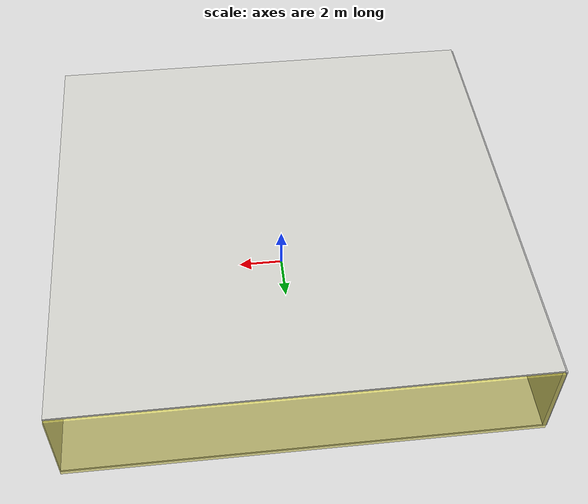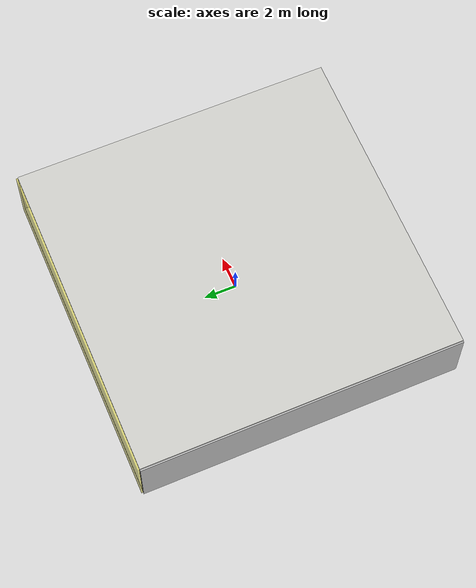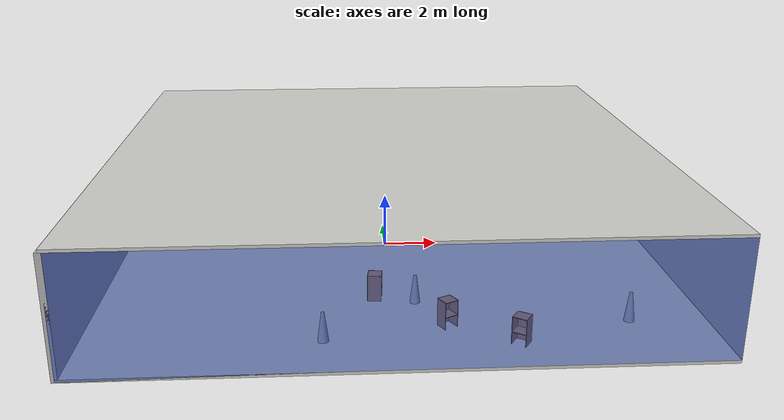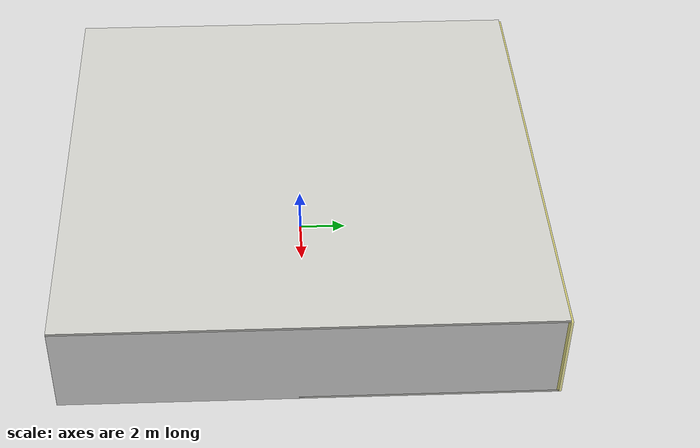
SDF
<sdf version="1.4">
 <world name="default">
  <physics type="ode">
   <max_step_size>0.001</max_step_size>
   <real_time_factor>1</real_time_factor>
   <real_time_update_rate>1000</real_time_update_rate>
   <gravity>0 0 -9.8</gravity>
  </physics>
  <scene><ambient>0.4 0.4 0.4 1</ambient><background>0.7 0.7 0.7 1</background><shadows>1</shadows></scene>
  <model name="Surrounding">
   <static>1</static>
   <link name="Ceiling">
    <collision name="Ceiling_Collision"><geometry><box><size>20 20 0.1</size></box></geometry></collision>
    <visual name="Ceiling_Visual">
     <geometry><box><size>20 20 0.1</size></box></geometry>
     <material>
      <script><uri>file://media/materials/scripts/gazebo.material</uri><name>Gazebo/CeilingTiled</name></script>
     </material>
    </visual>
    <pose>0 0 4.05 0 0 0</pose>
   </link>
   <link name="Wall_South">
    <collision name="Wall_South_Collision">
     <geometry><box><size>20 0 4</size></box></geometry>
     <pose>0 0 2 0 -0 0</pose>
    </collision>
    <visual name="Wall_South_Visual">
     <pose>0 0 2 0 -0 0</pose>
     <geometry><box><size>20 0 4</size></box></geometry>
     <material>
      <script><uri>file://media/materials/scripts/gazebo.material</uri><name>Gazebo/BlueTransparent</name></script>
     </material>
    </visual>
    <velocity_decay><linear>0</linear><angular>0</angular></velocity_decay>
    <pose>0 -10 0 0 -0 0</pose>
   </link>
   <link name="Wall_East">
    <collision name="Wall_21_Collision">
     <geometry><box><size>20 0 4</size></box></geometry>
     <pose>0 0 2 0 -0 0</pose>
    </collision>
    <visual name="Wall_21_Visual">
     <pose>0 0 2 0 -0 0</pose>
     <geometry><box><size>20 0 4</size></box></geometry>
     <material>
      <script><uri>file://media/materials/scripts/gazebo.material</uri><name>Gazebo/WhiteGlow</name></script>
     </material>
    </visual>
    <velocity_decay><linear>0</linear><angular>0</angular></velocity_decay>
    <pose>10 0 0 0 -0 1.5708</pose>
   </link>
   <link name="Wall_North">
    <collision name="Wall_22_Collision">
     <geometry><box><size>20 0.2 4</size></box></geometry>
     <pose>0 0 2 0 -0 0</pose>
    </collision>
    <visual name="Wall_22_Visual">
     <pose>0 0 2 0 -0 0</pose>
     <geometry><box><size>20 0.2 4</size></box></geometry>
     <material>
      <script>
       <uri>file://media/materials/scripts/gazebo.material</uri>
       <name>Gazebo/YellowTransparent</name>
      </script>
     </material>
    </visual>
    <velocity_decay><linear>0</linear><angular>0</angular></velocity_decay>
    <pose>0 10 0 0 -0 0</pose>
   </link>
   <link name="Wall_West">
    <collision name="Wall_23_Collision">
     <geometry><box><size>20 0.2 4</size></box></geometry>
     <pose>0 0 2 0 -0 0</pose>
    </collision>
    <visual name="Wall_23_Visual">
     <pose>0 0 2 0 -0 0</pose>
     <geometry><box><size>20 0.2 4</size></box></geometry>
     <material>
      <script><uri>file://media/materials/scripts/gazebo.material</uri><name>Gazebo/Pioneer2Body</name></script>
     </material>
    </visual>
    <velocity_decay><linear>0</linear><angular>0</angular></velocity_decay>
    <pose>-10 0 0 0 0 -1.5708</pose>
   </link>
   <link name="Ground_link">
    <collision name="collision">
     <pose>0 0 .05 0 -0 0</pose>
     <geometry><box><size>20 20 0.1</size></box></geometry>
    </collision>
    <visual name="visual">
     <pose>0 0 .05 0 -0 0</pose>
     <geometry><box><size>20 20 0.1</size></box></geometry>
     <material>
      <script><uri>file://media/materials/scripts/gazebo.material</uri><name>Gazebo/CeilingTiled</name></script>
     </material>
    </visual>
   </link>
   <static>1</static>
  </model>
  <spherical_coordinates>
   <surface_model>EARTH_WGS84</surface_model>
   <latitude_deg>0</latitude_deg>
   <longitude_deg>0</longitude_deg>
   <elevation>0</elevation>
   <heading_deg>0</heading_deg>
  </spherical_coordinates>
  <light name="lightball_0" type="diffuse">
   <diffuse>0.8 0.8 0.8 1</diffuse>
   <specular>0.2 0.2 0.2 1</specular>
   <attenuation>
    <range>100</range>
    <constant>0.7</constant>
    <linear>0.01</linear>
    <quadratic>0.001</quadratic>
   </attenuation>
   <direction>-0.5 0.1 -0.9</direction>
   <pose>5.94351208576 -3.86353539924 1.26443853614 0 0 0</pose>
  </light>
  <light name="lightball_1" type="diffuse">
   <diffuse>0.8 0.8 0.8 1</diffuse>
   <specular>0.2 0.2 0.2 1</specular>
   <attenuation>
    <range>100</range>
    <constant>0.7</constant>
    <linear>0.01</linear>
    <quadratic>0.001</quadratic>
   </attenuation>
   <direction>-0.5 0.1 -0.9</direction>
   <pose>0.902199069855 4.97424379568 1.63712090637 0 0 0</pose>
  </light>
  <light name="lightball_2" type="diffuse">
   <diffuse>0.8 0.8 0.8 1</diffuse>
   <specular>0.2 0.2 0.2 1</specular>
   <attenuation>
    <range>100</range>
    <constant>0.7</constant>
    <linear>0.01</linear>
    <quadratic>0.001</quadratic>
   </attenuation>
   <direction>-0.5 0.1 -0.9</direction>
   <pose>9.54755938883 -2.57510373626 1.44072377139 0 0 0</pose>
  </light>
  <light name="lightball_3" type="diffuse">
   <diffuse>0.8 0.8 0.8 1</diffuse>
   <specular>0.2 0.2 0.2 1</specular>
   <attenuation>
    <range>100</range>
    <constant>0.7</constant>
    <linear>0.01</linear>
    <quadratic>0.001</quadratic>
   </attenuation>
   <direction>-0.5 0.1 -0.9</direction>
   <pose>2.38618468282 -2.41432065155 1.89587556973 0 0 0</pose>
  </light>
  <light name="lightball_4" type="diffuse">
   <diffuse>0.8 0.8 0.8 1</diffuse>
   <specular>0.2 0.2 0.2 1</specular>
   <attenuation>
    <range>100</range>
    <constant>0.7</constant>
    <linear>0.01</linear>
    <quadratic>0.001</quadratic>
   </attenuation>
   <direction>-0.5 0.1 -0.9</direction>
   <pose>-9.22561326576 8.30451877725 1.13111452662 0 0 0</pose>
  </light>
  <light name="lightball_5" type="diffuse">
   <diffuse>0.8 0.8 0.8 1</diffuse>
   <specular>0.2 0.2 0.2 1</specular>
   <attenuation>
    <range>100</range>
    <constant>0.7</constant>
    <linear>0.01</linear>
    <quadratic>0.001</quadratic>
   </attenuation>
   <direction>-0.5 0.1 -0.9</direction>
   <pose>0.570260568684 8.16987696294 3.64446888592 0 0 0</pose>
  </light>
  <light name="lightball_6" type="diffuse">
   <diffuse>0.8 0.8 0.8 1</diffuse>
   <specular>0.2 0.2 0.2 1</specular>
   <attenuation>
    <range>100</range>
    <constant>0.7</constant>
    <linear>0.01</linear>
    <quadratic>0.001</quadratic>
   </attenuation>
   <direction>-0.5 0.1 -0.9</direction>
   <pose>-0.391794212288 8.12905422009 2.24865937869 0 0 0</pose>
  </light>
  <light name="lightball_7" type="diffuse">
   <diffuse>0.8 0.8 0.8 1</diffuse>
   <specular>0.2 0.2 0.2 1</specular>
   <attenuation>
    <range>100</range>
    <constant>0.7</constant>
    <linear>0.01</linear>
    <quadratic>0.001</quadratic>
   </attenuation>
   <direction>-0.5 0.1 -0.9</direction>
   <pose>4.38570104675 2.09800295836 3.36033263063 0 0 0</pose>
  </light>
  <light name="lightball_8" type="diffuse">
   <diffuse>0.8 0.8 0.8 1</diffuse>
   <specular>0.2 0.2 0.2 1</specular>
   <attenuation>
    <range>100</range>
    <constant>0.7</constant>
    <linear>0.01</linear>
    <quadratic>0.001</quadratic>
   </attenuation>
   <direction>-0.5 0.1 -0.9</direction>
   <pose>-9.38311423304 0.838852872115 3.32733425201 0 0 0</pose>
  </light>
  <include>
   <uri>model://construction_cone</uri>
   <pose>-2.38310288546 -8.10115732643 0 0 0 1.64474009423</pose>
  </include>
  <include><uri>model://cabinet</uri><pose>-0.643092137996 -5.13259453915 0 0 0 3.03126123596</pose></include>
  <include><uri>model://cabinet</uri><pose>1.56569591288 -7.27499462848 0 0 0 2.06038866644</pose></include>
  <include>
   <uri>model://construction_cone</uri>
   <pose>0.682628009193 -5.50200288597 0 0 0 0.786726137817</pose>
  </include>
  <include>
   <uri>model://textured_shapes</uri>
   <pose>1.52003903548 3.98228379474 0 0 0 1.60684876884</pose>
  </include>
  <include><uri>model://cabinet</uri><pose>3.68836990401 -8.5515830077 0 0 0 0.98201557003</pose></include>
  <include>
   <uri>model://construction_cone</uri>
   <pose>7.46150984836 -7.24934673628 0 0 0 2.48074485594</pose>
  </include>
  <include><uri>model://cabinet</uri><pose>7.8853632333 3.48523419853 0 0 0 2.35650495175</pose></include>
 </world>
</sdf>

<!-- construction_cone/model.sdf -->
<sdf version="1.5">
  <model name="Construction Cone">
    <link name="link">
      <collision name="collision">
        <geometry>
          <mesh>
            <scale>10 10 10</scale>
            <uri>file://isr-testbed/construction_cone/meshes/construction_cone.dae</uri>
          </mesh>
        </geometry>
      </collision>
      <visual name="visual">
        <geometry>
          <mesh>
            <scale>10 10 10</scale>
            <uri>file://isr-testbed/construction_cone/meshes/construction_cone.dae</uri>
          </mesh>
        </geometry>
      </visual>
    </link>
  </model>
</sdf>

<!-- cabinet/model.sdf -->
<sdf version="1.5">
  <model name="cabinet">
    <static>true</static>
    <link name="cabinet_bottom_plate">
      <inertial>
        <pose>0 0 -1 0 0 0</pose>
        <inertia>
          <ixx>2.050000</ixx>
          <ixy>0</ixy>
          <ixz>0</ixz>
          <iyy>2.050000</iyy>
          <iyz>0</iyz>
          <izz>2.050000</izz>
        </inertia>
        <mass>25.000000</mass>
      </inertial>
      <collision name="cabinet_bottom_plate_geom">
        <pose>0 0 0.010000 0 0 0</pose>
        <geometry>
          <box>
            <size>0.450000 0.450000 0.020000</size>
          </box>
        </geometry>
      </collision>
      <visual name="cabinet_bottom_plate_geom_visual">
        <pose>0 0 0.010000 0 0 0</pose>
        <geometry>
          <box>
            <size>0.450000 0.450000 0.020000</size>
          </box>
        </geometry>
        <material>
          <script>
            <uri>model://media/materials/scripts/gazebo.material</uri>
            <name>Gazebo/Wood</name>
          </script>
        </material>
      </visual>
      <collision name="cabinet_bottom_plate_geom_cabinet_back_plate">
        <pose>0.235000 0 0.510000 0 0 0</pose>
        <geometry>
          <box>
            <size>0.020000 0.450000 1.020000</size>
          </box>
        </geometry>
      </collision>
      <visual name="cabinet_bottom_plate_geom_cabinet_back_plate_visual">
        <pose>0.235000 0 0.510000 0 0 0</pose>
        <geometry>
          <box>
            <size>0.020000 0.450000 1.020000</size>
          </box>
        </geometry>
        <material>
          <script>
            <uri>model://media/materials/scripts/gazebo.material</uri>
            <name>Gazebo/Wood</name>
          </script>
        </material>
      </visual>
      <collision name="cabinet_bottom_plate_geom_cabinet_left_plate">
        <pose>0 0.235000 0.510000 0 0 0</pose>
        <geometry>
          <box>
            <size>0.450000 0.020000 1.020000</size>
          </box>
        </geometry>
      </collision>
      <visual name="cabinet_bottom_plate_geom_cabinet_left_plate_visual">
        <pose>0 0.235000 0.510000 0 0 0</pose>
        <geometry>
          <box>
            <size>0.450000 0.020000 1.020000</size>
          </box>
        </geometry>
        <material>
          <script>
            <uri>model://media/materials/scripts/gazebo.material</uri>
            <name>Gazebo/Wood</name>
          </script>
        </material>
      </visual>
      <collision name="cabinet_bottom_plate_geom_cabinet_middle_plate">
        <pose>0 0 0.510000 0 0 0</pose>
        <geometry>
          <box>
            <size>0.450000 0.450000 0.020000</size>
          </box>
        </geometry>
      </collision>
      <visual name="cabinet_bottom_plate_geom_cabinet_middle_plate_visual">
        <pose>0 0 0.510000 0 0 0</pose>
        <geometry>
          <box>
            <size>0.450000 0.450000 0.020000</size>
          </box>
        </geometry>
        <material>
          <script>
            <uri>model://media/materials/scripts/gazebo.material</uri>
            <name>Gazebo/Wood</name>
          </script>
        </material>
      </visual>
      <collision name="cabinet_bottom_plate_geom_cabinet_right_plate">
        <pose>0 -0.235000 0.510000 0 0 0</pose>
        <geometry>
          <box>
            <size>0.450000 0.020000 1.020000</size>
          </box>
        </geometry>
      </collision>
      <visual name="cabinet_bottom_plate_geom_cabinet_right_plate_visual">
        <pose>0 -0.235000 0.510000 0 0 0</pose>
        <geometry>
          <box>
            <size>0.450000 0.020000 1.020000</size>
          </box>
        </geometry>
        <material>
          <script>
            <uri>model://media/materials/scripts/gazebo.material</uri>
            <name>Gazebo/Wood</name>
          </script>
        </material>
      </visual>
      <collision name="cabinet_bottom_plate_geom_cabinet_top_plate">
        <pose>0 0 1.010000 0 0 0</pose>
        <geometry>
          <box>
            <size>0.450000 0.450000 0.020000</size>
          </box>
        </geometry>
      </collision>
      <visual name="cabinet_bottom_plate_geom_cabinet_top_plate_visual">
        <pose>0 0 1.010000 0 0 0</pose>
        <geometry>
          <box>
            <size>0.450000 0.450000 0.020000</size>
          </box>
        </geometry>
        <material>
          <script>
            <uri>model://media/materials/scripts/gazebo.material</uri>
            <name>Gazebo/Wood</name>
          </script>
        </material>
      </visual>
    </link>
  </model>
</sdf>

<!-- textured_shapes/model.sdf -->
<sdf version="1.6">
  <model name="textured_shapes">
    <pose>0 0 0.5 0 0 0</pose>
    <link name="box">
      <pose>0 -1.5 0 0 0 0</pose>
      <collision name="collision">
        <geometry>
          <box>
            <size>1 1 1</size>
          </box>
        </geometry>
      </collision>
      <visual name="visual">
        <geometry>
          <box>
            <size>1 1 1</size>
          </box>
        </geometry>
        <material>
          <script>
            <uri>model://../model_source/models/textured_shapes/materials/scripts</uri>
            <uri>model://../model_source/models/textured_shapes/materials/textures</uri>
            <name>TexturedShape/Squares</name>
          </script>
        </material>
      </visual>
    </link>
    <link name="sphere">
      <collision name="collision">
        <geometry>
          <sphere>
            <radius>0.5</radius>
          </sphere>
        </geometry>
      </collision>
      <visual name="visual">
        <geometry>
          <sphere>
            <radius>0.5</radius>
          </sphere>
        </geometry>
        <material>
          <script>
            <uri>model://../model_source/models/textured_shapes/materials/scripts</uri>
            <uri>model://../model_source/models/textured_shapes/materials/textures</uri>
            <name>TexturedShape/Squares</name>
          </script>
        </material>
      </visual>
    </link>
    <link name="cylinder">
      <pose>0 1.5 0 0 0 0</pose>
      <collision name="collision">
        <geometry>
          <cylinder>
            <radius>0.5</radius>
            <length>1</length>
          </cylinder>
        </geometry>
      </collision>
      <visual name="visual">
        <geometry>
          <cylinder>
            <radius>0.5</radius>
            <length>1</length>
          </cylinder>
        </geometry>
        <material>
          <script>
            <uri>model://../model_source/models/textured_shapes/materials/scripts</uri>
            <uri>model://../model_source/models/textured_shapes/materials/textures</uri>
            <name>TexturedShape/Squares</name>
          </script>
        </material>
      </visual>
    </link>
  </model>
</sdf>
